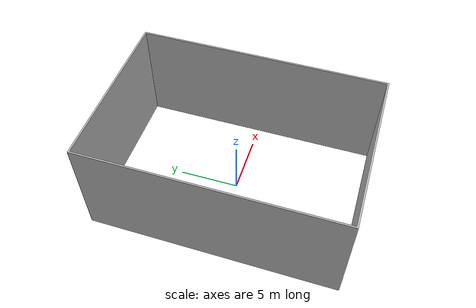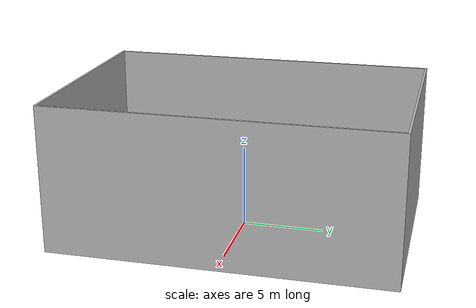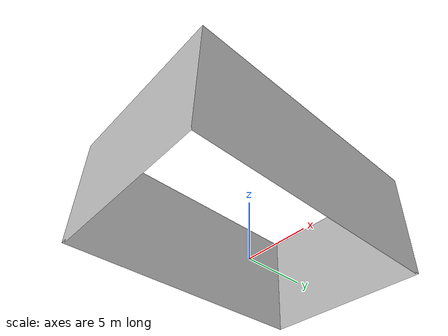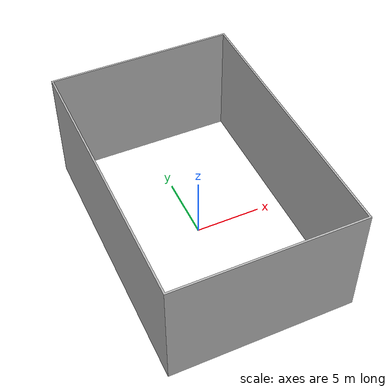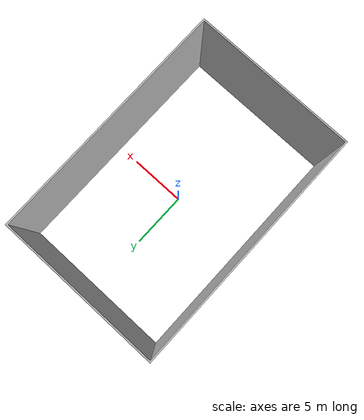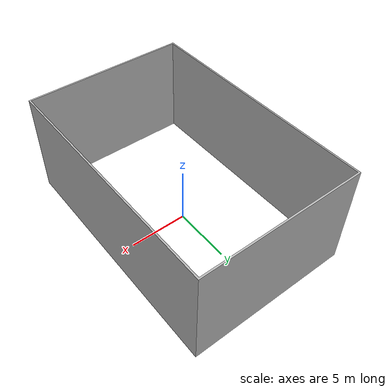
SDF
<?xml version="1.0" ?>
<sdf version="1.6">
  <model name="aws_robomaker_warehouse_WallB_01_classic">
    <link name="link">
      <inertial>
        <mass>1000</mass>
        <inertia>
          <ixx>840083.33</ixx>
          <ixy>0</ixy>
          <ixz>0</ixz>
          <iyy>475500.0</iyy>
          <iyz>0</iyz>
          <izz>1302083.33</izz>
        </inertia>
      </inertial>
      <collision name="collision">
        <geometry>
          <mesh>
            <uri>model://aws_robomaker_warehouse_WallB_01_classic/meshes/aws_robomaker_warehouse_WallB_01_classic_collision.DAE</uri>
            <scale>1 1 1</scale>
          </mesh>
        </geometry>
		<surface>
          <friction>
            <ode>
              <mu>0.5</mu>
              <mu2>0.5</mu2>
              <fdir1>0 0 0</fdir1>
              <slip1>0</slip1>
              <slip2>0</slip2>
            </ode>
        </friction>
          </surface>
      </collision>
      <visual name="visual">
	    <geometry>
          <mesh>
            <uri>model://aws_robomaker_warehouse_WallB_01_classic/meshes/aws_robomaker_warehouse_WallB_01_classic_visual.DAE</uri>
          </mesh>
        </geometry>
      <meta> <layer> 2 </layer></meta>
</visual>
    </link>
<static>1</static>
  </model>
</sdf>
